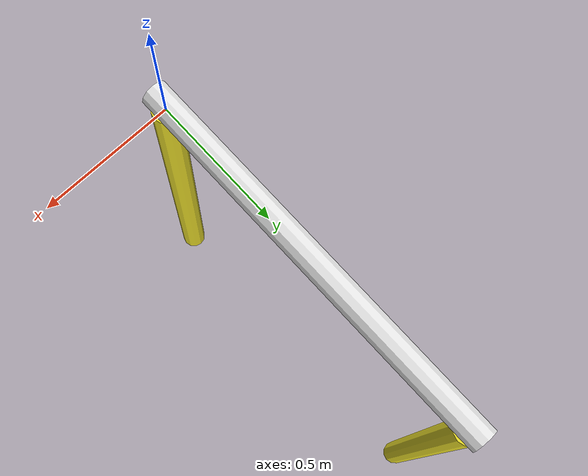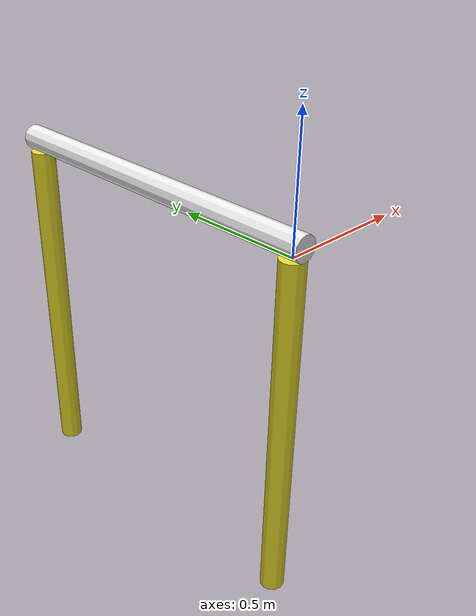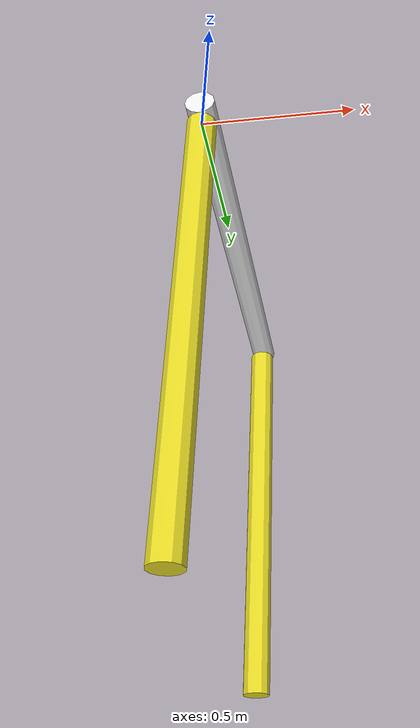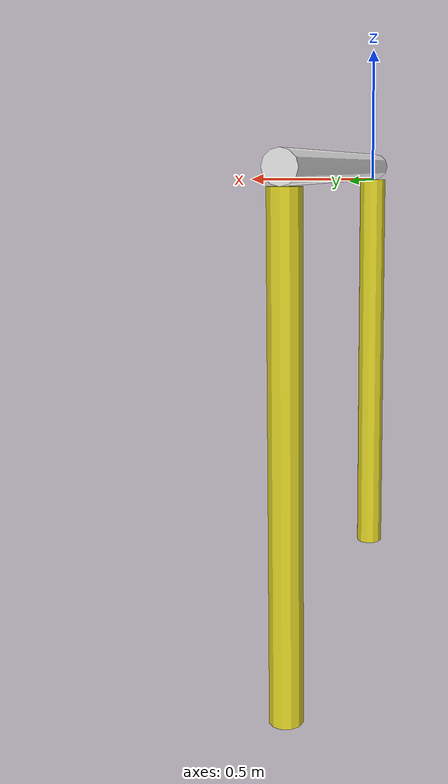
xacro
<?xml version="1.0" encoding="utf-8"?>

<robot name="q_gate"  xmlns:xacro="http://www.ros.org/wiki/xacro">

  <link name="base_link">
    <inertial>
      <origin
        xyz="0 -0.75 -9.7454E-19"
        rpy="0 0 0" />
      <mass
        value="11.781" />
      <inertia
        ixx="2.2163"
        ixy="-8.5374E-34"
        ixz="5.6241E-35"
        iyy="0.014726"
        iyz="0"
        izz="2.2163" />
    </inertial>
    <visual>
      <origin
        xyz="0 0 0"
        rpy="0 0 0" />
      <geometry>
        <mesh
          filename="package://uwv_env/meshes/sauvc_pool/gate_port.STL" />
      </geometry>
    </visual>
    <collision>
      <origin
        xyz="0 0 0"
        rpy="0 0 0" />
      <geometry>
        <mesh
          filename="package://uwv_env/meshes/sauvc_pool/gate_port.STL" />
      </geometry>
    </collision>
  </link>

  <link name="top">
    <inertial>
      <origin
        xyz="-9.7454E-19 0 0"
        rpy="0 0 0" />
      <mass
        value="11.781" />
      <inertia
        ixx="2.2163"
        ixy="0"
        ixz="0"
        iyy="2.2163"
        iyz="-8.5374E-34"
        izz="0.014726" />
    </inertial>
    <visual>
      <origin
        xyz="0 0 0"
        rpy="0 0 0" />
      <geometry>
        <mesh
          filename="package://uwv_env/meshes/sauvc_pool/gate_top.STL" />
      </geometry>
    </visual>
    <collision>
      <origin
        xyz="0 0 0"
        rpy="0 0 0" />
      <geometry>
        <mesh
          filename="package://uwv_env/meshes/sauvc_pool/gate_top.STL" />
      </geometry>
    </collision>
  </link>

  <joint name="top_joint" type="fixed">
    <origin
      xyz="0 0.7 0.05"
      rpy="1.5708 0 0" />
    <parent
      link="base_link" />
    <child
      link="top" />
    <axis
      xyz="0 0 0" />
  </joint>

  <link name="star">
    <inertial>
      <origin
        xyz="0 -0.75 0"
        rpy="0 0 0" />
      <mass
        value="11.781" />
      <inertia
        ixx="2.2163"
        ixy="-8.5374E-34"
        ixz="5.6241E-35"
        iyy="0.014726"
        iyz="0"
        izz="2.2163" />
    </inertial>
    <visual>
      <origin
        xyz="0 0 0"
        rpy="0 0 0" />
      <geometry>
        <mesh
          filename="package://uwv_env/meshes/sauvc_pool/gate_star.STL" />
      </geometry>
    </visual>
    <collision>
      <origin
        xyz="0 0 0"
        rpy="0 0 0" />
      <geometry>
        <mesh
          filename="package://uwv_env/meshes/sauvc_pool/gate_star.STL" />
      </geometry>
    </collision>
  </link>

  <joint name="star_joint" type="fixed">
    <origin
      xyz="0 1.4 0"
      rpy="1.5708 0 0" />
    <parent
      link="base_link" />
    <child
      link="star" />
    <axis
      xyz="0 0 0" />
  </joint>

  <gazebo reference="base_link">
	<material>Gazebo/Yellow</material>
  </gazebo>
  <gazebo reference="top">
	<material>Gazebo/White</material>
  </gazebo>
  <gazebo reference="star">
	<material>Gazebo/Yellow</material>
  </gazebo>

  <gazebo>
	<static>true</static>
  </gazebo>

</robot>
